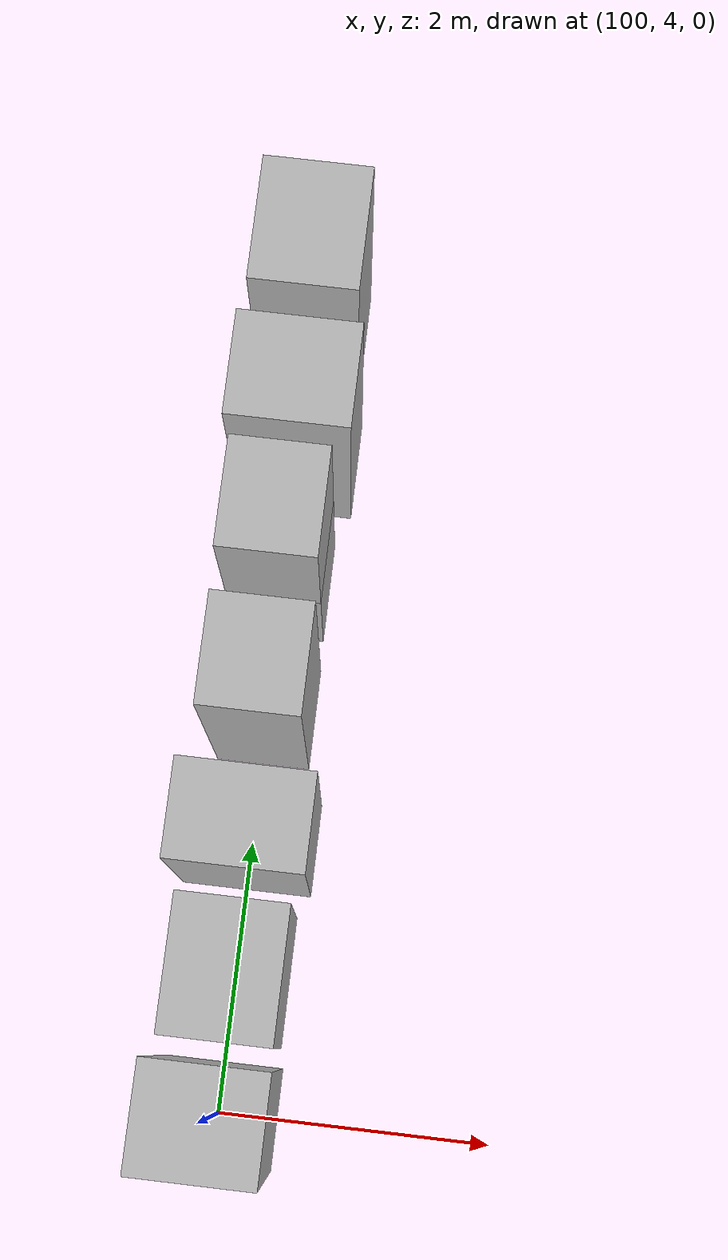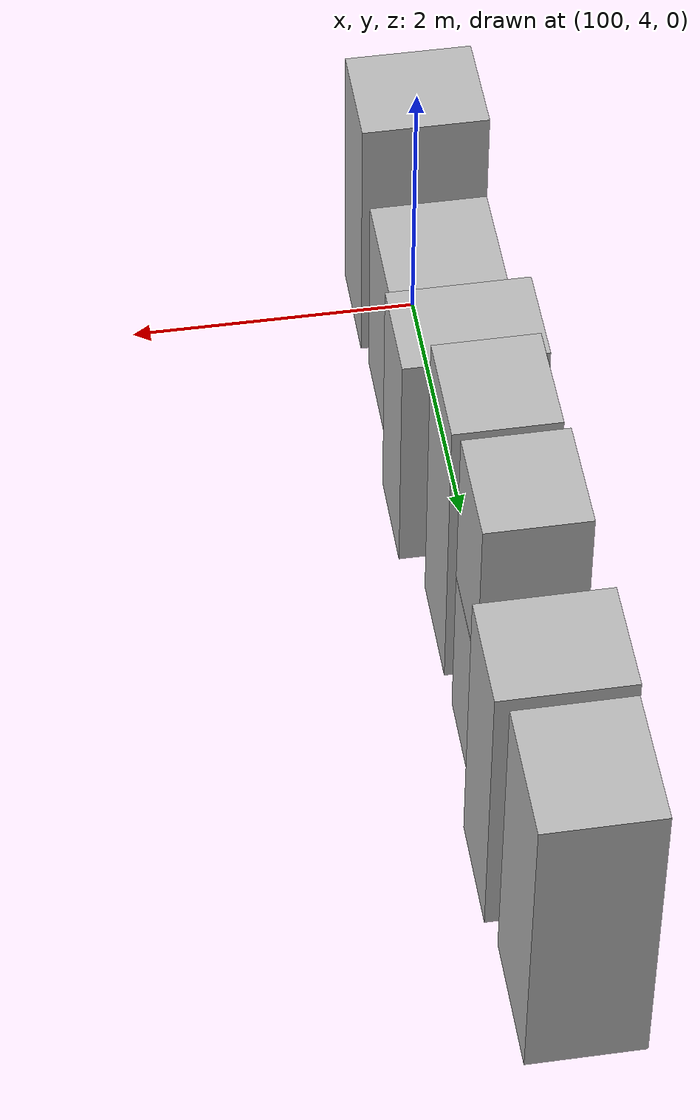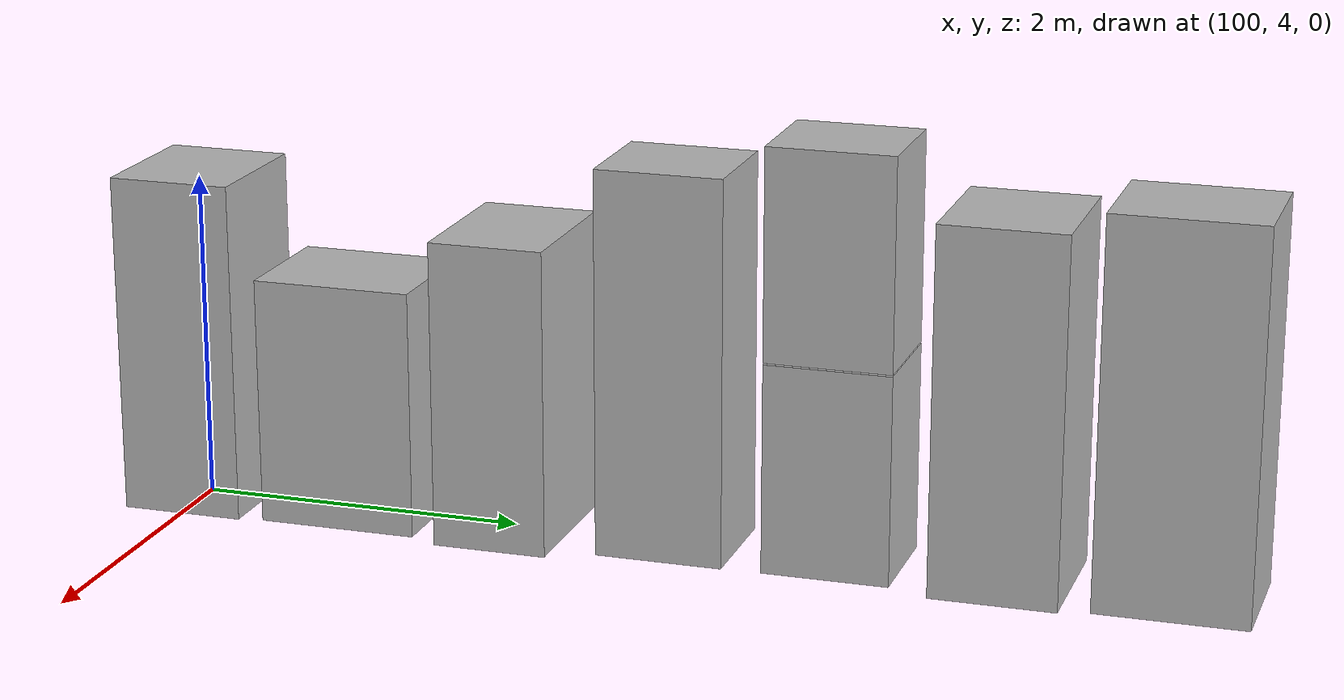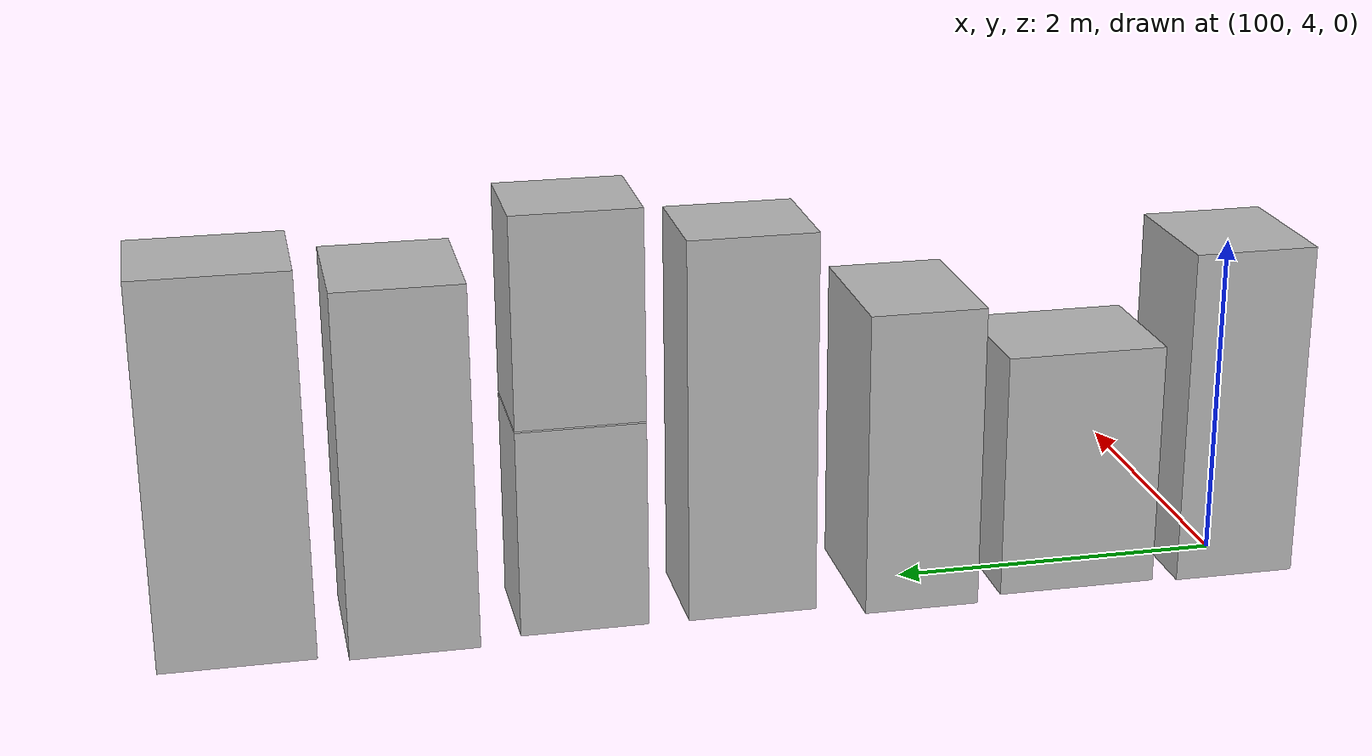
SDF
<sdf version="1.5">
 <world name="default">
  <model name="ground_plane">
   <static>true</static>
   <link name="link">
    <collision name="collision">
     <geometry><plane><normal>0 0 1</normal><size>250 250</size></plane></geometry>
     <surface><friction><ode><mu>1</mu><mu2>1</mu2></ode></friction></surface>
    </collision>
    <visual name="grass">
     <cast_shadows>false</cast_shadows>
     <geometry><mesh><uri>file://grass_plane/meshes/grass_plane.dae</uri></mesh></geometry>
    </visual>
   </link>
  </model>
  <model name="Cardboard_box_374">
   <link name="link_0">
    <pose>100 4 0 0 0 0</pose>
    <inertial>
     <mass>1</mass>
     <inertia>
      <ixx>0.166667</ixx>
      <ixy>0</ixy>
      <ixz>0</ixz>
      <iyy>0.166667</iyy>
      <iyz>0</iyz>
      <izz>0.166667</izz>
     </inertia>
    </inertial>
    <collision name="collision">
     <geometry>
      <mesh>
       <uri>model://Cardboard_box/meshes/cardboard_box.dae</uri>
       <scale>2.17296307621 1.87594911258 5.20250670027</scale>
      </mesh>
     </geometry>
    </collision>
    <visual name="visual">
     <geometry>
      <mesh>
       <uri>model://Cardboard_box/meshes/cardboard_box.dae</uri>
       <scale>2.17296307621 1.87594911258 5.20250670027</scale>
      </mesh>
     </geometry>
    </visual>
   </link>
   <static>1</static>
  </model>
  <model name="Cardboard_box_375">
   <link name="link_0">
    <pose>100 5 0 0 0 0</pose>
    <inertial>
     <mass>1</mass>
     <inertia>
      <ixx>0.166667</ixx>
      <ixy>0</ixy>
      <ixz>0</ixz>
      <iyy>0.166667</iyy>
      <iyz>0</iyz>
      <izz>0.166667</izz>
     </inertia>
    </inertial>
    <collision name="collision">
     <geometry>
      <mesh>
       <uri>model://Cardboard_box/meshes/cardboard_box.dae</uri>
       <scale>2.01108759734 2.43571888568 3.78180780969</scale>
      </mesh>
     </geometry>
    </collision>
    <visual name="visual">
     <geometry>
      <mesh>
       <uri>model://Cardboard_box/meshes/cardboard_box.dae</uri>
       <scale>2.01108759734 2.43571888568 3.78180780969</scale>
      </mesh>
     </geometry>
    </visual>
   </link>
   <static>1</static>
  </model>
  <model name="Cardboard_box_376">
   <link name="link_0">
    <pose>100 6 0 0 0 0</pose>
    <inertial>
     <mass>1</mass>
     <inertia>
      <ixx>0.166667</ixx>
      <ixy>0</ixy>
      <ixz>0</ixz>
      <iyy>0.166667</iyy>
      <iyz>0</iyz>
      <izz>0.166667</izz>
     </inertia>
    </inertial>
    <collision name="collision">
     <geometry>
      <mesh>
       <uri>model://Cardboard_box/meshes/cardboard_box.dae</uri>
       <scale>2.42814797275 1.7417897718 4.66092550665</scale>
      </mesh>
     </geometry>
    </collision>
    <visual name="visual">
     <geometry>
      <mesh>
       <uri>model://Cardboard_box/meshes/cardboard_box.dae</uri>
       <scale>2.42814797275 1.7417897718 4.66092550665</scale>
      </mesh>
     </geometry>
    </visual>
   </link>
   <static>1</static>
  </model>
  <model name="Cardboard_box_377">
   <link name="link_0">
    <pose>100 7 0 0 0 0</pose>
    <inertial>
     <mass>1</mass>
     <inertia>
      <ixx>0.166667</ixx>
      <ixy>0</ixy>
      <ixz>0</ixz>
      <iyy>0.166667</iyy>
      <iyz>0</iyz>
      <izz>0.166667</izz>
     </inertia>
    </inertial>
    <collision name="collision">
     <geometry>
      <mesh>
       <uri>model://Cardboard_box/meshes/cardboard_box.dae</uri>
       <scale>1.76405188501 1.933675056 5.86217507106</scale>
      </mesh>
     </geometry>
    </collision>
    <visual name="visual">
     <geometry>
      <mesh>
       <uri>model://Cardboard_box/meshes/cardboard_box.dae</uri>
       <scale>1.76405188501 1.933675056 5.86217507106</scale>
      </mesh>
     </geometry>
    </visual>
   </link>
   <static>1</static>
  </model>
  <model name="Cardboard_box_378">
   <link name="link_0">
    <pose>100 8 0 0 0 0</pose>
    <inertial>
     <mass>1</mass>
     <inertia>
      <ixx>0.166667</ixx>
      <ixy>0</ixy>
      <ixz>0</ixz>
      <iyy>0.166667</iyy>
      <iyz>0</iyz>
      <izz>0.166667</izz>
     </inertia>
    </inertial>
    <collision name="collision">
     <geometry>
      <mesh>
       <uri>model://Cardboard_box/meshes/cardboard_box.dae</uri>
       <scale>1.71251394951 1.90938781679 3.17692157543</scale>
      </mesh>
     </geometry>
    </collision>
    <visual name="visual">
     <geometry>
      <mesh>
       <uri>model://Cardboard_box/meshes/cardboard_box.dae</uri>
       <scale>1.71251394951 1.90938781679 3.17692157543</scale>
      </mesh>
     </geometry>
    </visual>
   </link>
   <static>1</static>
  </model>
  <model name="Cardboard_box_top_378">
   <link name="link_0">
    <pose>100 8 1.27076863017 0 0 0</pose>
    <inertial>
     <mass>1</mass>
     <inertia>
      <ixx>0.166667</ixx>
      <ixy>0</ixy>
      <ixz>0</ixz>
      <iyy>0.166667</iyy>
      <iyz>0</iyz>
      <izz>0.166667</izz>
     </inertia>
    </inertial>
    <collision name="collision">
     <geometry>
      <mesh>
       <uri>model://Cardboard_box/meshes/cardboard_box.dae</uri>
       <scale>1.71251394951 1.90938781679 3.17692157543</scale>
      </mesh>
     </geometry>
    </collision>
    <visual name="visual">
     <geometry>
      <mesh>
       <uri>model://Cardboard_box/meshes/cardboard_box.dae</uri>
       <scale>1.71251394951 1.90938781679 3.17692157543</scale>
      </mesh>
     </geometry>
    </visual>
   </link>
   <static>1</static>
  </model>
  <model name="Cardboard_box_379">
   <link name="link_0">
    <pose>100 9 0 0 0 0</pose>
    <inertial>
     <mass>1</mass>
     <inertia>
      <ixx>0.166667</ixx>
      <ixy>0</ixy>
      <ixz>0</ixz>
      <iyy>0.166667</iyy>
      <iyz>0</iyz>
      <izz>0.166667</izz>
     </inertia>
    </inertial>
    <collision name="collision">
     <geometry>
      <mesh>
       <uri>model://Cardboard_box/meshes/cardboard_box.dae</uri>
       <scale>2.19863605246 1.89083218541 5.52296411784</scale>
      </mesh>
     </geometry>
    </collision>
    <visual name="visual">
     <geometry>
      <mesh>
       <uri>model://Cardboard_box/meshes/cardboard_box.dae</uri>
       <scale>2.19863605246 1.89083218541 5.52296411784</scale>
      </mesh>
     </geometry>
    </visual>
   </link>
   <static>1</static>
  </model>
  <model name="Cardboard_box_380">
   <link name="link_0">
    <pose>100 10 0 0 0 0</pose>
    <inertial>
     <mass>1</mass>
     <inertia>
      <ixx>0.166667</ixx>
      <ixy>0</ixy>
      <ixz>0</ixz>
      <iyy>0.166667</iyy>
      <iyz>0</iyz>
      <izz>0.166667</izz>
     </inertia>
    </inertial>
    <collision name="collision">
     <geometry>
      <mesh>
       <uri>model://Cardboard_box/meshes/cardboard_box.dae</uri>
       <scale>1.93010815658 2.26013549668 5.83265765162</scale>
      </mesh>
     </geometry>
    </collision>
    <visual name="visual">
     <geometry>
      <mesh>
       <uri>model://Cardboard_box/meshes/cardboard_box.dae</uri>
       <scale>1.93010815658 2.26013549668 5.83265765162</scale>
      </mesh>
     </geometry>
    </visual>
   </link>
   <static>1</static>
  </model>
 </world>
</sdf>
